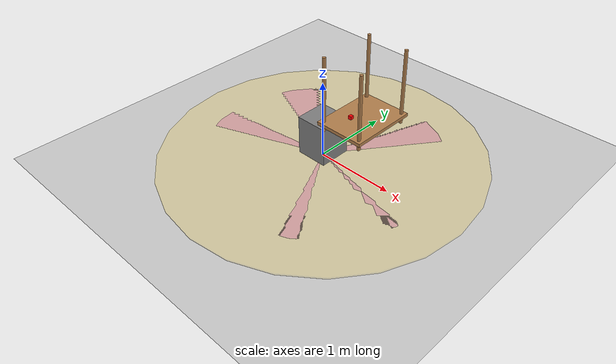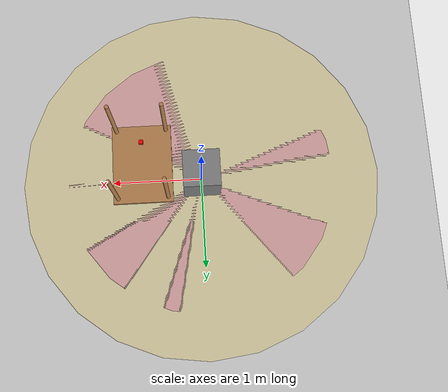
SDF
<sdf version="1.6">
 <world name="ur_robot_world">
  <physics type="ode">
   <real_time_update_rate>1000.0</real_time_update_rate>
   <max_step_size>0.001</max_step_size>
   <real_time_factor>1</real_time_factor>
  </physics>
  <plugin name="gazebo_ros_state" filename="libgazebo_ros_state.so">
   <ros><namespace>/gazebo</namespace></ros>
   <update_rate>1.0</update_rate>
  </plugin>
  <plugin name="gazebo_ros_factory" filename="libgazebo_ros_factory.so">
   <ros><namespace>/gazebo</namespace></ros>
  </plugin>
  <include><uri>model://ground_plane</uri></include>
  <include><uri>model://sun</uri></include>
  <model name="robot_table">
   <static>true</static>
   <pose>0 0 0.3 0 0 0</pose>
   <link name="link">
    <collision name="collision"><geometry><box><size>0.4 0.4 0.6</size></box></geometry></collision>
    <visual name="visual">
     <geometry><box><size>0.4 0.4 0.5</size></box></geometry>
     <material><ambient>0.5 0.5 0.5 1</ambient><diffuse>0.5 0.5 0.5 1</diffuse></material>
    </visual>
   </link>
  </model>
  <model name="work_table">
   <static>true</static>
   <pose>0.6 0.0 0.8 0 0 0</pose>
   <link name="link">
    <collision name="collision"><geometry><box><size>0.6 0.8 0.04</size></box></geometry></collision>
    <visual name="visual">
     <geometry><box><size>0.6 0.8 0.04</size></box></geometry>
     <material>
      <script><uri>file://media/materials/scripts/gazebo.material</uri><name>Gazebo/Wood</name></script>
     </material>
    </visual>
   </link>
   <link name="leg1">
    <pose>0.25 0.35 0.35 0 0 0</pose>
    <collision name="collision">
     <geometry><cylinder><radius>0.02</radius><length>0.9</length></cylinder></geometry>
    </collision>
    <visual name="visual">
     <geometry><cylinder><radius>0.02</radius><length>0.9</length></cylinder></geometry>
     <material>
      <script><uri>file://media/materials/scripts/gazebo.material</uri><name>Gazebo/Wood</name></script>
     </material>
    </visual>
   </link>
   <link name="leg2">
    <pose>0.25 -0.35 0.35 0 0 0</pose>
    <collision name="collision">
     <geometry><cylinder><radius>0.02</radius><length>0.9</length></cylinder></geometry>
    </collision>
    <visual name="visual">
     <geometry><cylinder><radius>0.02</radius><length>0.9</length></cylinder></geometry>
     <material>
      <script><uri>file://media/materials/scripts/gazebo.material</uri><name>Gazebo/Wood</name></script>
     </material>
    </visual>
   </link>
   <link name="leg3">
    <pose>-0.25 0.35 0.35 0 0 0</pose>
    <collision name="collision">
     <geometry><cylinder><radius>0.02</radius><length>0.9</length></cylinder></geometry>
    </collision>
    <visual name="visual">
     <geometry><cylinder><radius>0.02</radius><length>0.9</length></cylinder></geometry>
     <material>
      <script><uri>file://media/materials/scripts/gazebo.material</uri><name>Gazebo/Wood</name></script>
     </material>
    </visual>
   </link>
   <link name="leg4">
    <pose>-0.25 -0.35 0.35 0 0 0</pose>
    <collision name="collision">
     <geometry><cylinder><radius>0.02</radius><length>0.9</length></cylinder></geometry>
    </collision>
    <visual name="visual">
     <geometry><cylinder><radius>0.02</radius><length>0.9</length></cylinder></geometry>
     <material>
      <script><uri>file://media/materials/scripts/gazebo.material</uri><name>Gazebo/Wood</name></script>
     </material>
    </visual>
   </link>
  </model>
  <model name="warning_zone">
   <static>true</static>
   <pose>0 0 0.01 0 0 0</pose>
   <link name="link">
    <visual name="visual">
     <cast_shadows>false</cast_shadows>
     <geometry><cylinder><radius>2.0</radius><length>0.02</length></cylinder></geometry>
     <material>
      <ambient>1 0.8 0 0.2</ambient>
      <diffuse>1 0.8 0 0.2</diffuse>
      <specular>1 0.8 0 0.2</specular>
      <transparency>0.8</transparency>
     </material>
    </visual>
   </link>
  </model>
  <model name="stop_zone">
   <static>true</static>
   <pose>0 0 0.01 0 0 0</pose>
   <link name="link">
    <visual name="visual">
     <cast_shadows>false</cast_shadows>
     <geometry><cylinder><radius>1.5</radius><length>0.02</length></cylinder></geometry>
     <material>
      <ambient>1 0 0 0.2</ambient>
      <diffuse>1 0 0 0.2</diffuse>
      <specular>1 0 0 0.2</specular>
      <transparency>0.8</transparency>
     </material>
    </visual>
   </link>
  </model>
  <model name="red_cube">
   <pose>0.6 -0.2 0.92 0 0 0</pose>
   <link name="link">
    <collision name="collision"><geometry><box><size>0.04 0.04 0.04</size></box></geometry></collision>
    <visual name="visual">
     <geometry><box><size>0.04 0.04 0.04</size></box></geometry>
     <material><ambient>1 0 0 1</ambient><diffuse>1 0 0 1</diffuse></material>
    </visual>
    <inertial>
     <mass>0.1</mass>
     <inertia>
      <ixx>0.000027</ixx>
      <ixy>0.0</ixy>
      <ixz>0.0</ixz>
      <iyy>0.000027</iyy>
      <iyz>0.0</iyz>
      <izz>0.000027</izz>
     </inertia>
    </inertial>
   </link>
  </model>
 </world>
</sdf>
